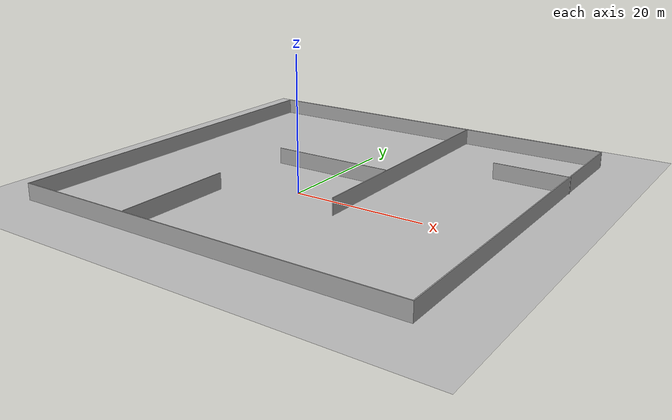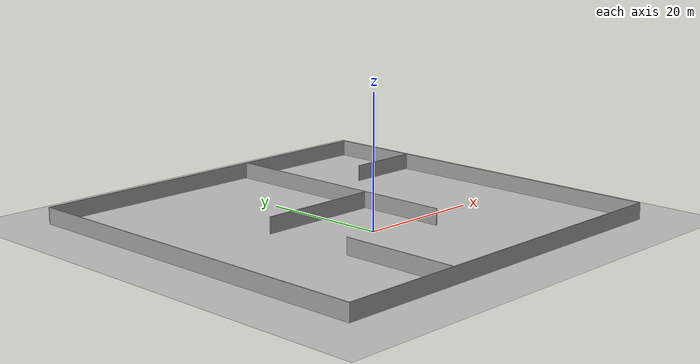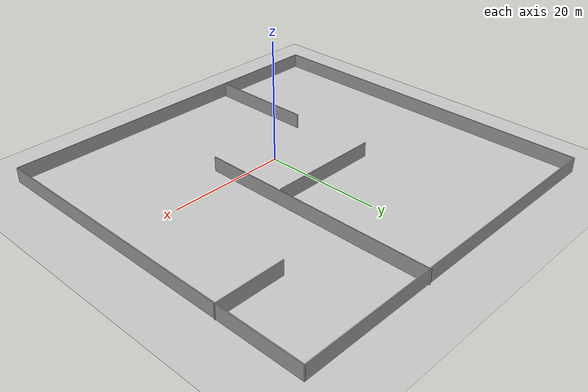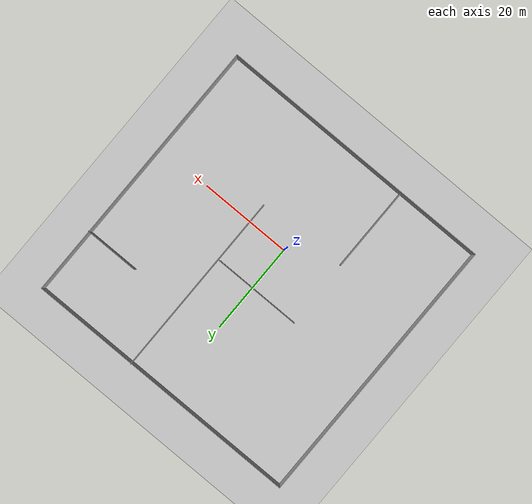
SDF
<?xml version="1.0" ?>
<sdf version='1.7'>
  <world name='default'>

    <include>
      <uri>model://ground_plane</uri>
    </include>
    <include>
      <uri>model://sun</uri>
    </include>

    <plugin name="ros_interface_plugin" filename="librotors_gazebo_ros_interface_plugin.so"/>

    <gravity>0 0 -9.8</gravity>
    <magnetic_field>6e-06 2.3e-05 -4.2e-05</magnetic_field>
    <atmosphere type='adiabatic'/>
    <physics type='ode'>
      <max_step_size>0.002</max_step_size>
      <real_time_factor>1</real_time_factor>
      <real_time_update_rate>500</real_time_update_rate>
    </physics>
    <scene>
      <ambient>0.4 0.4 0.4 1</ambient>
      <background>0.7 0.7 0.7 1</background>
      <shadows>1</shadows>
    </scene>
    <wind/>
    <spherical_coordinates>
      <surface_model>EARTH_WGS84</surface_model>
      <latitude_deg>0</latitude_deg>
      <longitude_deg>0</longitude_deg>
      <elevation>0</elevation>
      <heading_deg>0</heading_deg>
    </spherical_coordinates>

    <model name='Untitled'>
      <pose>1.29026 6.56645 0 0 -0 0</pose>
      <link name='Wall_1'>
        <collision name='Wall_1_Collision'>
          <geometry>
            <box>
              <size>61 0.15 2.5</size>
            </box>
          </geometry>
          <pose>0 0 1.25 0 -0 0</pose>
          <max_contacts>10</max_contacts>
          <surface>
            <contact>
              <ode/>
            </contact>
            <bounce/>
            <friction>
              <torsional>
                <ode/>
              </torsional>
              <ode/>
            </friction>
          </surface>
        </collision>
        <visual name='Wall_1_Visual'>
          <pose>0 0 1.25 0 -0 0</pose>
          <geometry>
            <box>
              <size>61 0.15 2.5</size>
            </box>
          </geometry>
          <material>
            <script>
              <uri>file://media/materials/scripts/gazebo.material</uri>
              <name>Gazebo/Grey</name>
            </script>
            <ambient>1 1 1 1</ambient>
          </material>
          <meta>
            <layer>0</layer>
          </meta>
        </visual>
        <pose>-0.055413 -29.8977 0 0 -0 0</pose>
        <self_collide>0</self_collide>
        <enable_wind>0</enable_wind>
        <kinematic>0</kinematic>
      </link>
      <link name='Wall_10'>
        <collision name='Wall_10_Collision'>
          <geometry>
            <box>
              <size>40.75 0.15 2.5</size>
            </box>
          </geometry>
          <pose>0 0 1.25 0 -0 0</pose>
          <max_contacts>10</max_contacts>
          <surface>
            <contact>
              <ode/>
            </contact>
            <bounce/>
            <friction>
              <torsional>
                <ode/>
              </torsional>
              <ode/>
            </friction>
          </surface>
        </collision>
        <visual name='Wall_10_Visual'>
          <pose>0 0 1.25 0 -0 0</pose>
          <geometry>
            <box>
              <size>40.75 0.15 2.5</size>
            </box>
          </geometry>
          <material>
            <script>
              <uri>file://media/materials/scripts/gazebo.material</uri>
              <name>Gazebo/Grey</name>
            </script>
            <ambient>1 1 1 1</ambient>
          </material>
          <meta>
            <layer>0</layer>
          </meta>
        </visual>
        <pose>7.51816 9.59766 0 0 -0 -1.5708</pose>
        <self_collide>0</self_collide>
        <enable_wind>0</enable_wind>
        <kinematic>0</kinematic>
      </link>
      <link name='Wall_13'>
        <collision name='Wall_13_Collision'>
          <geometry>
            <box>
              <size>19.25 0.15 2.5</size>
            </box>
          </geometry>
          <pose>0 0 1.25 0 -0 0</pose>
          <max_contacts>10</max_contacts>
          <surface>
            <contact>
              <ode/>
            </contact>
            <bounce/>
            <friction>
              <torsional>
                <ode/>
              </torsional>
              <ode/>
            </friction>
          </surface>
        </collision>
        <visual name='Wall_13_Visual'>
          <pose>0 0 1.25 0 -0 0</pose>
          <geometry>
            <box>
              <size>19.25 0.15 2.5</size>
            </box>
          </geometry>
          <material>
            <script>
              <uri>file://media/materials/scripts/gazebo.material</uri>
              <name>Gazebo/Grey</name>
            </script>
            <ambient>1 1 1 1</ambient>
          </material>
          <meta>
            <layer>0</layer>
          </meta>
        </visual>
        <pose>-2.40827 3.1711 0 0 -0 3.14159</pose>
        <self_collide>0</self_collide>
        <enable_wind>0</enable_wind>
        <kinematic>0</kinematic>
      </link>
      <link name='Wall_15'>
        <collision name='Wall_15_Collision'>
          <geometry>
            <box>
              <size>18.25 0.15 2.5</size>
            </box>
          </geometry>
          <pose>0 0 1.25 0 -0 0</pose>
          <max_contacts>10</max_contacts>
          <surface>
            <contact>
              <ode/>
            </contact>
            <bounce/>
            <friction>
              <torsional>
                <ode/>
              </torsional>
              <ode/>
            </friction>
          </surface>
        </collision>
        <visual name='Wall_15_Visual'>
          <pose>0 0 1.25 0 -0 0</pose>
          <geometry>
            <box>
              <size>18.25 0.15 2.5</size>
            </box>
          </geometry>
          <material>
            <script>
              <uri>file://media/materials/scripts/gazebo.material</uri>
              <name>Gazebo/Grey</name>
            </script>
            <ambient>1 1 1 1</ambient>
          </material>
          <meta>
            <layer>0</layer>
          </meta>
        </visual>
        <pose>-11.6798 -20.5283 0 0 -0 1.5708</pose>
        <self_collide>0</self_collide>
        <enable_wind>0</enable_wind>
        <kinematic>0</kinematic>
      </link>
      <link name='Wall_17'>
        <collision name='Wall_17_Collision'>
          <geometry>
            <box>
              <size>11.75 0.15 2.5</size>
            </box>
          </geometry>
          <pose>0 0 1.25 0 -0 0</pose>
          <max_contacts>10</max_contacts>
          <surface>
            <contact>
              <ode/>
            </contact>
            <bounce/>
            <friction>
              <torsional>
                <ode/>
              </torsional>
              <ode/>
            </friction>
          </surface>
        </collision>
        <visual name='Wall_17_Visual'>
          <pose>0 0 1.25 0 -0 0</pose>
          <geometry>
            <box>
              <size>11.75 0.15 2.5</size>
            </box>
          </geometry>
          <material>
            <script>
              <uri>file://media/materials/scripts/gazebo.material</uri>
              <name>Gazebo/Grey</name>
            </script>
            <ambient>1 1 1 1</ambient>
          </material>
          <meta>
            <layer>0</layer>
          </meta>
        </visual>
        <pose>24.6804 15.2169 0 0 -0 3.14159</pose>
        <self_collide>0</self_collide>
        <enable_wind>0</enable_wind>
        <kinematic>0</kinematic>
      </link>
      <link name='Wall_2'>
        <collision name='Wall_2_Collision'>
          <geometry>
            <box>
              <size>59.75 0.15 2.5</size>
            </box>
          </geometry>
          <pose>0 0 1.25 0 -0 0</pose>
          <max_contacts>10</max_contacts>
          <surface>
            <contact>
              <ode/>
            </contact>
            <bounce/>
            <friction>
              <torsional>
                <ode/>
              </torsional>
              <ode/>
            </friction>
          </surface>
        </collision>
        <visual name='Wall_2_Visual'>
          <pose>0 0 1.25 0 -0 0</pose>
          <geometry>
            <box>
              <size>59.75 0.15 2.5</size>
            </box>
          </geometry>
          <material>
            <script>
              <uri>file://media/materials/scripts/gazebo.material</uri>
              <name>Gazebo/Grey</name>
            </script>
            <ambient>1 1 1 1</ambient>
          </material>
          <meta>
            <layer>0</layer>
          </meta>
        </visual>
        <pose>30.3696 -0.097655 0 0 -0 1.5708</pose>
        <self_collide>0</self_collide>
        <enable_wind>0</enable_wind>
        <kinematic>0</kinematic>
      </link>
      <link name='Wall_3'>
        <collision name='Wall_3_Collision'>
          <geometry>
            <box>
              <size>61 0.15 2.5</size>
            </box>
          </geometry>
          <pose>0 0 1.25 0 -0 0</pose>
          <max_contacts>10</max_contacts>
          <surface>
            <contact>
              <ode/>
            </contact>
            <bounce/>
            <friction>
              <torsional>
                <ode/>
              </torsional>
              <ode/>
            </friction>
          </surface>
        </collision>
        <visual name='Wall_3_Visual'>
          <pose>0 0 1.25 0 -0 0</pose>
          <geometry>
            <box>
              <size>61 0.15 2.5</size>
            </box>
          </geometry>
          <material>
            <script>
              <uri>file://media/materials/scripts/gazebo.material</uri>
              <name>Gazebo/Grey</name>
            </script>
            <ambient>1 1 1 1</ambient>
          </material>
          <meta>
            <layer>0</layer>
          </meta>
        </visual>
        <pose>-0.055413 29.7023 0 0 -0 3.14159</pose>
        <self_collide>0</self_collide>
        <enable_wind>0</enable_wind>
        <kinematic>0</kinematic>
      </link>
      <link name='Wall_4'>
        <collision name='Wall_4_Collision'>
          <geometry>
            <box>
              <size>59.75 0.15 2.5</size>
            </box>
          </geometry>
          <pose>0 0 1.25 0 -0 0</pose>
          <max_contacts>10</max_contacts>
          <surface>
            <contact>
              <ode/>
            </contact>
            <bounce/>
            <friction>
              <torsional>
                <ode/>
              </torsional>
              <ode/>
            </friction>
          </surface>
        </collision>
        <visual name='Wall_4_Visual'>
          <pose>0 0 1.25 0 -0 0</pose>
          <geometry>
            <box>
              <size>59.75 0.15 2.5</size>
            </box>
          </geometry>
          <material>
            <script>
              <uri>file://media/materials/scripts/gazebo.material</uri>
              <name>Gazebo/Grey</name>
            </script>
            <ambient>1 1 1 1</ambient>
          </material>
          <meta>
            <layer>0</layer>
          </meta>
        </visual>
        <pose>-30.4804 -0.097655 0 0 -0 -1.5708</pose>
        <self_collide>0</self_collide>
        <enable_wind>0</enable_wind>
        <kinematic>0</kinematic>
      </link>
      <static>1</static>
    </model>

  </world>
</sdf>
